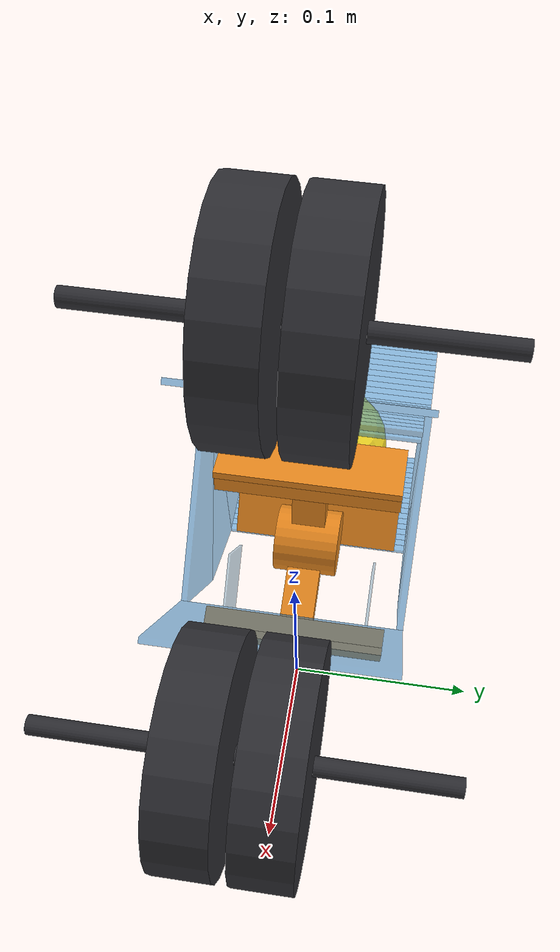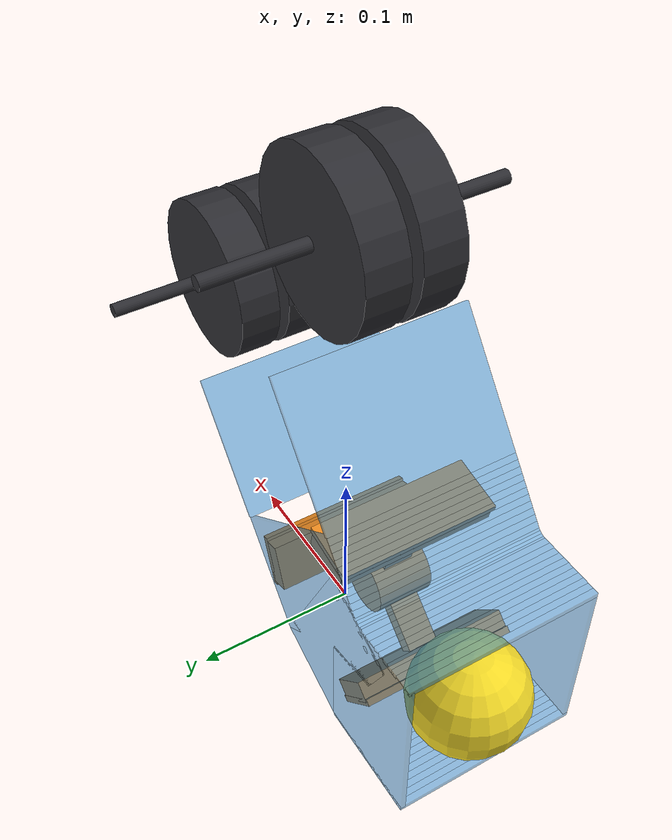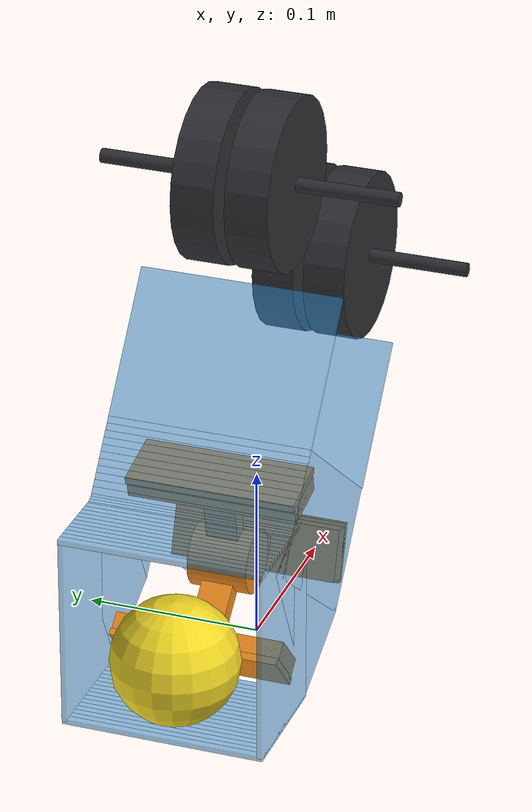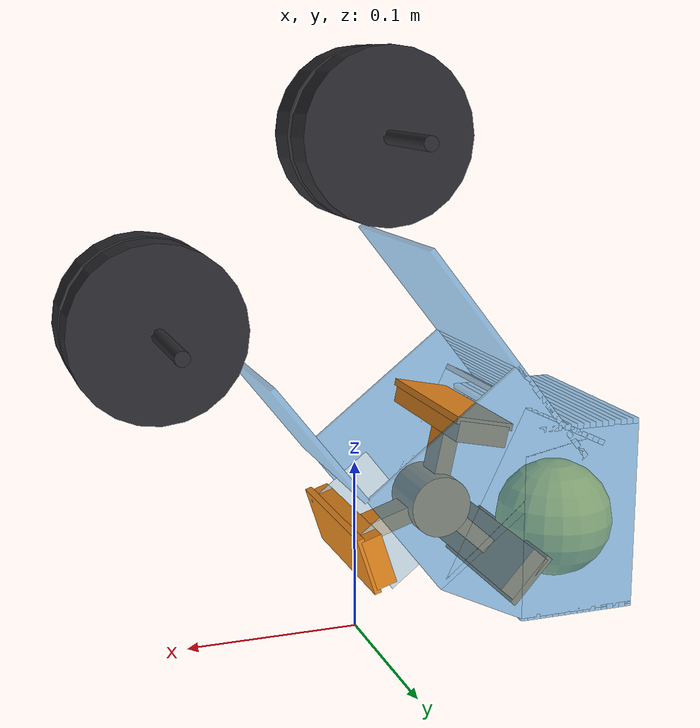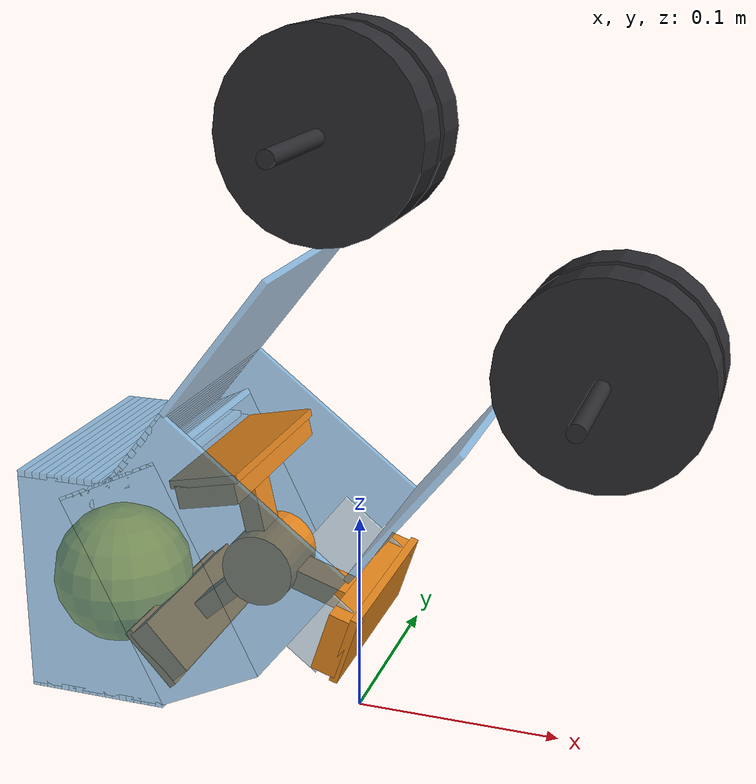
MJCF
<mujoco model="t06_pollen_launcher">
  <compiler angle="radian" autolimits="true"/>
  <option timestep="0.0002" gravity="0 0 -9.81" integrator="implicitfast" cone="elliptic"/>
  <default>
    <geom friction="0.5 0.01 0.0001" solref="0.008 1" solimp="0.95 0.99 0.001"/>
    <default class="guide"><geom friction="0.25 0.005 0.0001" rgba="0.2 0.56 0.84 0.55"/></default>
    <default class="finger"><geom friction="0.2 0.005 0.0001" rgba="0.76 0.88 0.96 0.7"/></default>
    <default class="flywheel"><geom friction="1.6 0.02 0.0001" solref="0.006 1" rgba="0.18 0.18 0.20 1"/></default>
    <default class="paddle"><geom friction="0.7 0.01 0.0001" solref="0.006 1" rgba="0.92 0.54 0.12 1"/></default>
    <default class="ball"><geom friction="1.0 0.02 0.0001" solref="0.010 1" solimp="0.9 0.95 0.002" rgba="0.95 0.85 0.15 1" priority="1"/></default>
  </default>
  <worldbody>
    <light pos="0.2 -0.6 1.0" dir="-0.2 0.6 -1" diffuse="0.8 0.8 0.8"/>
    <geom name="guide_floor_1_0" class="guide" type="box" size="0.001944 0.057000 0.001500" pos="-0.148056 0.000000 0.016000" quat="1.000000 0.000000 -0.000000 0.000000"/>
    <geom name="guide_floor_1_1" class="guide" type="box" size="0.001944 0.057000 0.001500" pos="-0.144167 0.000000 0.016000" quat="1.000000 0.000000 -0.000000 0.000000"/>
    <geom name="guide_floor_1_2" class="guide" type="box" size="0.001944 0.057000 0.001500" pos="-0.140278 0.000000 0.016000" quat="1.000000 0.000000 -0.000000 0.000000"/>
    <geom name="guide_floor_1_3" class="guide" type="box" size="0.001944 0.057000 0.001500" pos="-0.136389 0.000000 0.016000" quat="1.000000 0.000000 -0.000000 0.000000"/>
    <geom name="guide_floor_1_4" class="guide" type="box" size="0.001944 0.057000 0.001500" pos="-0.132500 0.000000 0.016000" quat="1.000000 0.000000 -0.000000 0.000000"/>
    <geom name="guide_floor_1_5" class="guide" type="box" size="0.001944 0.057000 0.001500" pos="-0.128611 0.000000 0.016000" quat="1.000000 0.000000 -0.000000 0.000000"/>
    <geom name="guide_floor_1_6" class="guide" type="box" size="0.001944 0.057000 0.001500" pos="-0.124722 0.000000 0.016000" quat="1.000000 0.000000 -0.000000 0.000000"/>
    <geom name="guide_floor_1_7" class="guide" type="box" size="0.001944 0.057000 0.001500" pos="-0.120833 0.000000 0.016000" quat="1.000000 0.000000 -0.000000 0.000000"/>
    <geom name="guide_floor_1_8" class="guide" type="box" size="0.001944 0.057000 0.001500" pos="-0.116944 0.000000 0.016000" quat="1.000000 0.000000 -0.000000 0.000000"/>
    <geom name="guide_floor_1_9" class="guide" type="box" size="0.001944 0.057000 0.001500" pos="-0.113056 0.000000 0.016000" quat="1.000000 0.000000 -0.000000 0.000000"/>
    <geom name="guide_floor_1_10" class="guide" type="box" size="0.001944 0.057000 0.001500" pos="-0.109167 0.000000 0.016000" quat="1.000000 0.000000 -0.000000 0.000000"/>
    <geom name="guide_floor_1_11" class="guide" type="box" size="0.001944 0.057000 0.001500" pos="-0.105278 0.000000 0.016000" quat="1.000000 0.000000 -0.000000 0.000000"/>
    <geom name="guide_floor_1_12" class="guide" type="box" size="0.001944 0.057000 0.001500" pos="-0.101389 0.000000 0.016000" quat="1.000000 0.000000 -0.000000 0.000000"/>
    <geom name="guide_floor_1_13" class="guide" type="box" size="0.001944 0.057000 0.001500" pos="-0.097500 0.000000 0.016000" quat="1.000000 0.000000 -0.000000 0.000000"/>
    <geom name="guide_floor_1_14" class="guide" type="box" size="0.001944 0.057000 0.001500" pos="-0.093611 0.000000 0.016000" quat="1.000000 0.000000 -0.000000 0.000000"/>
    <geom name="guide_floor_1_15" class="guide" type="box" size="0.001944 0.057000 0.001500" pos="-0.089722 0.000000 0.016000" quat="1.000000 0.000000 -0.000000 0.000000"/>
    <geom name="guide_floor_1_16" class="guide" type="box" size="0.001944 0.057000 0.001500" pos="-0.085833 0.000000 0.016000" quat="1.000000 0.000000 -0.000000 0.000000"/>
    <geom name="guide_floor_1_17" class="guide" type="box" size="0.001944 0.057000 0.001500" pos="-0.081944 0.000000 0.016000" quat="1.000000 0.000000 -0.000000 0.000000"/>
    <geom name="guide_roof_1_0" class="guide" type="box" size="0.001944 0.057000 0.001500" pos="-0.148056 0.000000 0.126000" quat="1.000000 0.000000 -0.000000 0.000000"/>
    <geom name="guide_roof_1_1" class="guide" type="box" size="0.001944 0.057000 0.001500" pos="-0.144167 0.000000 0.126000" quat="1.000000 0.000000 -0.000000 0.000000"/>
    <geom name="guide_roof_1_2" class="guide" type="box" size="0.001944 0.057000 0.001500" pos="-0.140278 0.000000 0.126000" quat="1.000000 0.000000 -0.000000 0.000000"/>
    <geom name="guide_roof_1_3" class="guide" type="box" size="0.001944 0.057000 0.001500" pos="-0.136389 0.000000 0.126000" quat="1.000000 0.000000 -0.000000 0.000000"/>
    <geom name="guide_roof_1_4" class="guide" type="box" size="0.001944 0.057000 0.001500" pos="-0.132500 0.000000 0.126000" quat="1.000000 0.000000 -0.000000 0.000000"/>
    <geom name="guide_roof_1_5" class="guide" type="box" size="0.001944 0.057000 0.001500" pos="-0.128611 0.000000 0.126000" quat="1.000000 0.000000 -0.000000 0.000000"/>
    <geom name="guide_roof_1_6" class="guide" type="box" size="0.001944 0.057000 0.001500" pos="-0.124722 0.000000 0.126000" quat="1.000000 0.000000 -0.000000 0.000000"/>
    <geom name="guide_roof_1_7" class="guide" type="box" size="0.001944 0.057000 0.001500" pos="-0.120833 0.000000 0.126000" quat="1.000000 0.000000 -0.000000 0.000000"/>
    <geom name="guide_roof_1_8" class="guide" type="box" size="0.001944 0.057000 0.001500" pos="-0.116944 0.000000 0.126000" quat="1.000000 0.000000 -0.000000 0.000000"/>
    <geom name="guide_roof_1_9" class="guide" type="box" size="0.001944 0.057000 0.001500" pos="-0.113056 0.000000 0.126000" quat="1.000000 0.000000 -0.000000 0.000000"/>
    <geom name="guide_roof_1_10" class="guide" type="box" size="0.001944 0.057000 0.001500" pos="-0.109167 0.000000 0.126000" quat="1.000000 0.000000 -0.000000 0.000000"/>
    <geom name="guide_roof_1_11" class="guide" type="box" size="0.001944 0.057000 0.001500" pos="-0.105278 0.000000 0.126000" quat="1.000000 0.000000 -0.000000 0.000000"/>
    <geom name="guide_roof_1_12" class="guide" type="box" size="0.001944 0.057000 0.001500" pos="-0.101389 0.000000 0.126000" quat="1.000000 0.000000 -0.000000 0.000000"/>
    <geom name="guide_roof_1_13" class="guide" type="box" size="0.001944 0.057000 0.001500" pos="-0.097500 0.000000 0.126000" quat="1.000000 0.000000 -0.000000 0.000000"/>
    <geom name="guide_roof_1_14" class="guide" type="box" size="0.001944 0.057000 0.001500" pos="-0.093611 0.000000 0.126000" quat="1.000000 0.000000 -0.000000 0.000000"/>
    <geom name="guide_roof_1_15" class="guide" type="box" size="0.001944 0.057000 0.001500" pos="-0.089722 0.000000 0.126000" quat="1.000000 0.000000 -0.000000 0.000000"/>
    <geom name="guide_roof_1_16" class="guide" type="box" size="0.001944 0.057000 0.001500" pos="-0.085833 0.000000 0.126000" quat="1.000000 0.000000 -0.000000 0.000000"/>
    <geom name="guide_wall_1_-1_0" class="guide" type="box" size="0.035000 0.001500 0.055000" pos="-0.115000 -0.055500 0.071000" quat="1.000000 0.000000 -0.000000 0.000000"/>
    <geom name="guide_wall_1_+1_0" class="guide" type="box" size="0.035000 0.001500 0.055000" pos="-0.115000 0.055500 0.071000" quat="1.000000 0.000000 -0.000000 0.000000"/>
    <geom name="guide_roof_2_0" class="guide" type="box" size="0.001964 0.057000 0.001500" pos="-0.126455 0.000000 0.115728" quat="0.974370 0.000000 -0.224951 0.000000"/>
    <geom name="guide_roof_2_1" class="guide" type="box" size="0.001964 0.057000 0.001500" pos="-0.122924 0.000000 0.117451" quat="0.974370 0.000000 -0.224951 0.000000"/>
    <geom name="guide_roof_2_2" class="guide" type="box" size="0.001964 0.057000 0.001500" pos="-0.119393 0.000000 0.119173" quat="0.974370 0.000000 -0.224951 0.000000"/>
    <geom name="guide_roof_2_3" class="guide" type="box" size="0.001964 0.057000 0.001500" pos="-0.115862 0.000000 0.120895" quat="0.974370 0.000000 -0.224951 0.000000"/>
    <geom name="guide_roof_2_4" class="guide" type="box" size="0.001964 0.057000 0.001500" pos="-0.112331 0.000000 0.122617" quat="0.974370 0.000000 -0.224951 0.000000"/>
    <geom name="guide_roof_2_5" class="guide" type="box" size="0.001964 0.057000 0.001500" pos="-0.108800 0.000000 0.124339" quat="0.974370 0.000000 -0.224951 0.000000"/>
    <geom name="guide_roof_2_6" class="guide" type="box" size="0.001964 0.057000 0.001500" pos="-0.105269 0.000000 0.126061" quat="0.974370 0.000000 -0.224951 0.000000"/>
    <geom name="guide_roof_2_7" class="guide" type="box" size="0.001964 0.057000 0.001500" pos="-0.101739 0.000000 0.127784" quat="0.974370 0.000000 -0.224951 0.000000"/>
    <geom name="guide_roof_2_8" class="guide" type="box" size="0.001964 0.057000 0.001500" pos="-0.098208 0.000000 0.129506" quat="0.974370 0.000000 -0.224951 0.000000"/>
    <geom name="guide_roof_2_9" class="guide" type="box" size="0.001964 0.057000 0.001500" pos="-0.094677 0.000000 0.131228" quat="0.974370 0.000000 -0.224951 0.000000"/>
    <geom name="guide_roof_2_10" class="guide" type="box" size="0.001964 0.057000 0.001500" pos="-0.091146 0.000000 0.132950" quat="0.974370 0.000000 -0.224951 0.000000"/>
    <geom name="guide_roof_2_11" class="guide" type="box" size="0.001964 0.057000 0.001500" pos="-0.087615 0.000000 0.134672" quat="0.974370 0.000000 -0.224951 0.000000"/>
    <geom name="guide_roof_2_12" class="guide" type="box" size="0.001964 0.057000 0.001500" pos="-0.084084 0.000000 0.136394" quat="0.974370 0.000000 -0.224951 0.000000"/>
    <geom name="guide_roof_2_13" class="guide" type="box" size="0.001964 0.057000 0.001500" pos="-0.080553 0.000000 0.138117" quat="0.974370 0.000000 -0.224951 0.000000"/>
    <geom name="guide_wall_2_-1_0" class="guide" type="box" size="0.027500 0.001500 0.055000" pos="-0.079394 -0.055500 0.077489" quat="0.974370 0.000000 -0.224951 0.000000"/>
    <geom name="guide_wall_2_+1_0" class="guide" type="box" size="0.027500 0.001500 0.055000" pos="-0.079394 0.055500 0.077489" quat="0.974370 0.000000 -0.224951 0.000000"/>
    <geom name="guide_roof_3_0" class="guide" type="box" size="0.001944 0.057000 0.001500" pos="-0.116050 0.000000 0.109365" quat="0.898794 0.000000 -0.438371 0.000000"/>
    <geom name="guide_roof_3_1" class="guide" type="box" size="0.001944 0.057000 0.001500" pos="-0.113656 0.000000 0.112430" quat="0.898794 0.000000 -0.438371 0.000000"/>
    <geom name="guide_roof_3_2" class="guide" type="box" size="0.001944 0.057000 0.001500" pos="-0.111262 0.000000 0.115494" quat="0.898794 0.000000 -0.438371 0.000000"/>
    <geom name="guide_roof_3_3" class="guide" type="box" size="0.001944 0.057000 0.001500" pos="-0.108868 0.000000 0.118559" quat="0.898794 0.000000 -0.438371 0.000000"/>
    <geom name="guide_roof_3_4" class="guide" type="box" size="0.001944 0.057000 0.001500" pos="-0.106473 0.000000 0.121623" quat="0.898794 0.000000 -0.438371 0.000000"/>
    <geom name="guide_roof_3_5" class="guide" type="box" size="0.001944 0.057000 0.001500" pos="-0.104079 0.000000 0.124688" quat="0.898794 0.000000 -0.438371 0.000000"/>
    <geom name="guide_roof_3_6" class="guide" type="box" size="0.001944 0.057000 0.001500" pos="-0.101685 0.000000 0.127752" quat="0.898794 0.000000 -0.438371 0.000000"/>
    <geom name="guide_roof_3_7" class="guide" type="box" size="0.001944 0.057000 0.001500" pos="-0.099291 0.000000 0.130817" quat="0.898794 0.000000 -0.438371 0.000000"/>
    <geom name="guide_roof_3_8" class="guide" type="box" size="0.001944 0.057000 0.001500" pos="-0.096896 0.000000 0.133881" quat="0.898794 0.000000 -0.438371 0.000000"/>
    <geom name="guide_roof_3_9" class="guide" type="box" size="0.001944 0.057000 0.001500" pos="-0.094502 0.000000 0.136946" quat="0.898794 0.000000 -0.438371 0.000000"/>
    <geom name="guide_roof_3_10" class="guide" type="box" size="0.001944 0.057000 0.001500" pos="-0.092108 0.000000 0.140010" quat="0.898794 0.000000 -0.438371 0.000000"/>
    <geom name="guide_roof_3_11" class="guide" type="box" size="0.001944 0.057000 0.001500" pos="-0.089714 0.000000 0.143075" quat="0.898794 0.000000 -0.438371 0.000000"/>
    <geom name="guide_roof_3_12" class="guide" type="box" size="0.001944 0.057000 0.001500" pos="-0.087320 0.000000 0.146139" quat="0.898794 0.000000 -0.438371 0.000000"/>
    <geom name="guide_roof_3_13" class="guide" type="box" size="0.001944 0.057000 0.001500" pos="-0.084925 0.000000 0.149204" quat="0.898794 0.000000 -0.438371 0.000000"/>
    <geom name="guide_roof_3_14" class="guide" type="box" size="0.001944 0.057000 0.001500" pos="-0.082531 0.000000 0.152268" quat="0.898794 0.000000 -0.438371 0.000000"/>
    <geom name="guide_roof_3_15" class="guide" type="box" size="0.001944 0.057000 0.001500" pos="-0.080137 0.000000 0.155333" quat="0.898794 0.000000 -0.438371 0.000000"/>
    <geom name="guide_roof_3_16" class="guide" type="box" size="0.001944 0.057000 0.001500" pos="-0.077743 0.000000 0.158397" quat="0.898794 0.000000 -0.438371 0.000000"/>
    <geom name="guide_roof_3_17" class="guide" type="box" size="0.001944 0.057000 0.001500" pos="-0.075348 0.000000 0.161462" quat="0.898794 0.000000 -0.438371 0.000000"/>
    <geom name="guide_wall_3_-1_0" class="guide" type="box" size="0.035000 0.001500 0.055000" pos="-0.052359 -0.055500 0.101552" quat="0.898794 0.000000 -0.438371 0.000000"/>
    <geom name="guide_wall_3_+1_0" class="guide" type="box" size="0.035000 0.001500 0.055000" pos="-0.052359 0.055500 0.101552" quat="0.898794 0.000000 -0.438371 0.000000"/>
    <geom name="throat_-55_0" class="guide" type="box" size="0.041500 0.057000 0.001500" pos="0.038080 0.000000 0.127974" quat="0.898794 0.000000 -0.438371 0.000000"/>
    <geom name="throat_+55_0" class="guide" type="box" size="0.041500 0.057000 0.001500" pos="-0.048601 0.000000 0.195696" quat="0.898794 0.000000 -0.438371 0.000000"/>
    <geom name="finger_-1_0" class="finger" type="box" size="0.019000 0.000600 0.022000" pos="-0.014566 -0.038000 0.065110" quat="0.898794 0.000000 -0.438371 0.000000"/>
    <geom name="finger_+1_0" class="finger" type="box" size="0.019000 0.000600 0.022000" pos="-0.014566 0.038000 0.065110" quat="0.898794 0.000000 -0.438371 0.000000"/>
  <body name="flywheel_upper" pos="-0.010737 0.000000 0.284767">
    <joint name="fw_upper" type="hinge" axis="0 1 0" damping="0.0002"/>
    <geom name="fw_shaft_upper" class="flywheel" type="cylinder" size="0.004000 0.084000" quat="0.707107 -0.707107 0 0" mass="0.05"/>
    <geom name="fw_upper_1" class="flywheel" type="cylinder" size="0.048000 0.012000" pos="0 -0.015000 0" quat="0.707107 -0.707107 0 0" mass="0.105"/>
    <geom name="fw_upper_2" class="flywheel" type="cylinder" size="0.048000 0.012000" pos="0 0.015000 0" quat="0.707107 -0.707107 0 0" mass="0.105"/>
  </body>
  <body name="flywheel_lower" pos="0.115345 0.000000 0.186261">
    <joint name="fw_lower" type="hinge" axis="0 1 0" damping="0.0002"/>
    <geom name="fw_shaft_lower" class="flywheel" type="cylinder" size="0.004000 0.084000" quat="0.707107 -0.707107 0 0" mass="0.05"/>
    <geom name="fw_lower_1" class="flywheel" type="cylinder" size="0.048000 0.012000" pos="0 -0.015000 0" quat="0.707107 -0.707107 0 0" mass="0.105"/>
    <geom name="fw_lower_2" class="flywheel" type="cylinder" size="0.048000 0.012000" pos="0 0.015000 0" quat="0.707107 -0.707107 0 0" mass="0.105"/>
  </body>
  <body name="paddle" pos="-0.047000 0.000000 0.073000">
    <joint name="paddle_joint" type="hinge" axis="0 1 0" damping="0.0005"/>
    <geom name="paddle_hub" class="paddle" type="cylinder" size="0.018000 0.017000" quat="0.707107 -0.707107 0 0" mass="0.05"/>
    <geom name="paddle_arm_1" class="paddle" type="box" size="0.016000 0.009000 0.005000" pos="0.028532 0.000000 -0.009271" quat="0.987688 0.000000 0.156434 0.000000" mass="0.01"/>
    <geom name="paddle_blade_1" class="paddle" type="box" size="0.006000 0.048000 0.015000" pos="0.049455 0.000000 -0.016069" quat="0.987688 0.000000 0.156434 0.000000" mass="0.02"/>
    <geom name="paddle_flex_1" class="paddle" type="box" size="0.002000 0.048000 0.017000" pos="0.055161 0.000000 -0.017923" quat="0.987688 0.000000 0.156434 0.000000" mass="0.008"/>
    <geom name="paddle_arm_2" class="paddle" type="box" size="0.016000 0.009000 0.005000" pos="-0.022294 0.000000 -0.020074" quat="0.358368 0.000000 0.933580 0.000000" mass="0.01"/>
    <geom name="paddle_blade_2" class="paddle" type="box" size="0.006000 0.048000 0.015000" pos="-0.038644 0.000000 -0.034795" quat="0.358368 0.000000 0.933580 0.000000" mass="0.02"/>
    <geom name="paddle_flex_2" class="paddle" type="box" size="0.002000 0.048000 0.017000" pos="-0.043102 0.000000 -0.038810" quat="0.358368 0.000000 0.933580 0.000000" mass="0.008"/>
    <geom name="paddle_arm_3" class="paddle" type="box" size="0.016000 0.009000 0.005000" pos="-0.006237 0.000000 0.029344" quat="-0.629320 0.000000 0.777146 0.000000" mass="0.01"/>
    <geom name="paddle_blade_3" class="paddle" type="box" size="0.006000 0.048000 0.015000" pos="-0.010811 0.000000 0.050864" quat="-0.629320 0.000000 0.777146 0.000000" mass="0.02"/>
    <geom name="paddle_flex_3" class="paddle" type="box" size="0.002000 0.048000 0.017000" pos="-0.012059 0.000000 0.056733" quat="-0.629320 0.000000 0.777146 0.000000" mass="0.008"/>
  </body>
  <body name="ball" pos="-0.128000 0 0.053060">
    <freejoint name="ball_free"/>
    <geom name="ball_geom" class="ball" type="sphere" size="0.035560" mass="0.06"/>
  </body>
  </worldbody>
  <actuator>
    <velocity name="fw_upper_vel" joint="fw_upper" kv="0.5" ctrlrange="-400 400" forcerange="-3.0 3.0"/>
    <velocity name="fw_lower_vel" joint="fw_lower" kv="0.5" ctrlrange="-400 400" forcerange="-3.0 3.0"/>
    <velocity name="paddle_vel" joint="paddle_joint" kv="0.08" ctrlrange="-100 100" forcerange="-0.6 0.6"/>
  </actuator>
  <sensor>
    <framepos name="ball_pos" objtype="body" objname="ball"/>
    <framelinvel name="ball_vel" objtype="body" objname="ball"/>
  </sensor>
</mujoco>
